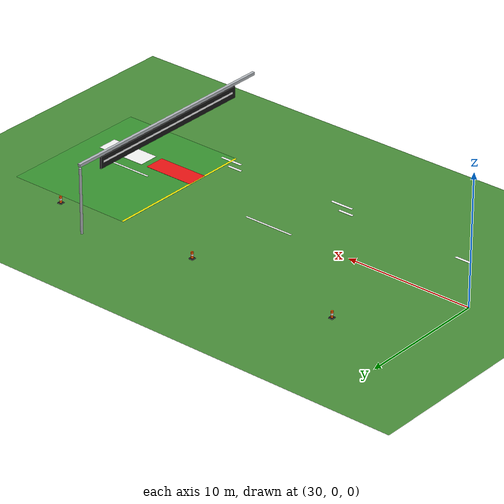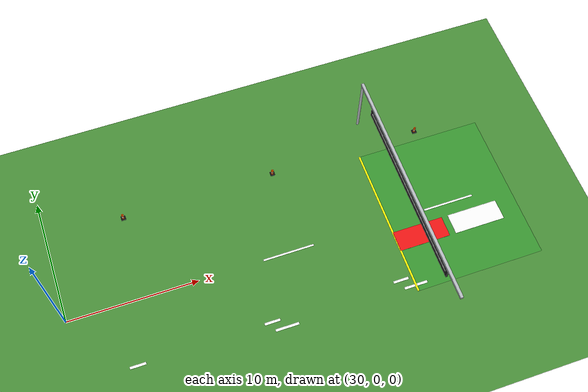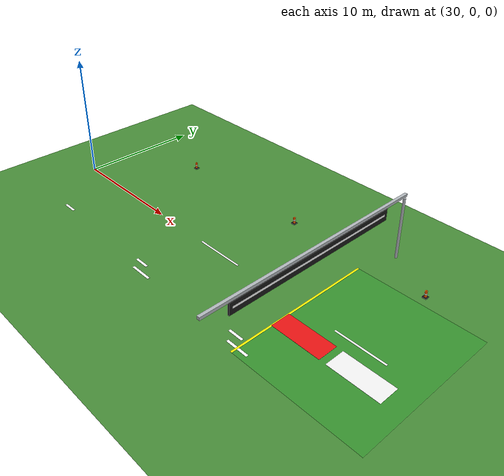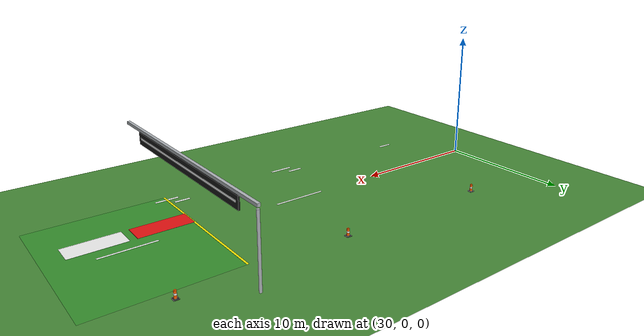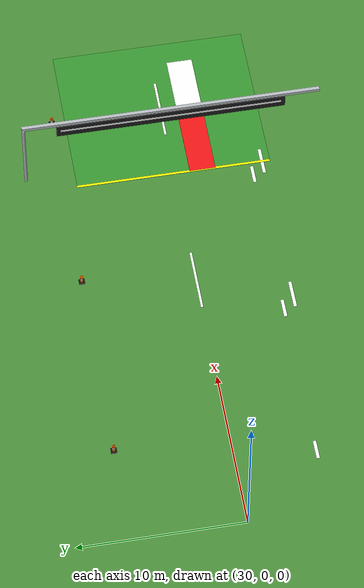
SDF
<sdf version="1.6">
 <world name="sem_silesia_ring_2026">
  <model name="ground_plane">
   <static>true</static>
   <link name="link">
    <collision name="collision">
     <geometry><plane><normal>0 0 1</normal><size>600 600</size></plane></geometry>
     <surface><friction><ode><mu>0.6</mu><mu2>0.6</mu2></ode></friction></surface>
    </collision>
    <visual name="visual">
     <geometry><plane><normal>0 0 1</normal><size>600 600</size></plane></geometry>
     <material><ambient>0.28 0.55 0.22 1</ambient><diffuse>0.28 0.55 0.22 1</diffuse></material>
    </visual>
   </link>
  </model>
  <model name="cd_s1_0">
   <static>true</static>
   <pose>60.0000 0.0000 0.0050 0 0 0.0000</pose>
   <link name="link">
    <visual name="v">
     <geometry><box><size>4.0000 0.1500 0.0080</size></box></geometry>
     <material><ambient>1 1 1 1</ambient><diffuse>1 1 1 1</diffuse></material>
    </visual>
    <collision name="c">
     <geometry><box><size>4.0000 0.1500 0.0080</size></box></geometry>
     <surface><friction><ode><mu>0.9</mu><mu2>0.9</mu2></ode></friction></surface>
    </collision>
   </link>
  </model>
  <model name="cd_s1_1">
   <static>true</static>
   <pose>47.0000 0.0000 0.0050 0 0 0.0000</pose>
   <link name="link">
    <visual name="v">
     <geometry><box><size>4.0000 0.1500 0.0080</size></box></geometry>
     <material><ambient>1 1 1 1</ambient><diffuse>1 1 1 1</diffuse></material>
    </visual>
    <collision name="c">
     <geometry><box><size>4.0000 0.1500 0.0080</size></box></geometry>
     <surface><friction><ode><mu>0.9</mu><mu2>0.9</mu2></ode></friction></surface>
    </collision>
   </link>
  </model>
  <model name="lmark_h_0">
   <static>true</static>
   <pose>55.0000 -5.5000 0.0050 0 0 0.0000</pose>
   <link name="link">
    <visual name="v">
     <geometry><box><size>1.8000 0.2000 0.0080</size></box></geometry>
     <material><ambient>1 1 1 1</ambient><diffuse>1 1 1 1</diffuse></material>
    </visual>
    <collision name="c">
     <geometry><box><size>1.8000 0.2000 0.0080</size></box></geometry>
     <surface><friction><ode><mu>0.9</mu><mu2>0.9</mu2></ode></friction></surface>
    </collision>
   </link>
  </model>
  <model name="lmark_v_0">
   <static>true</static>
   <pose>54.1000 -4.8000 0.0050 0 0 1.5708</pose>
   <link name="link">
    <visual name="v">
     <geometry><box><size>0.2000 1.2000 0.0080</size></box></geometry>
     <material><ambient>1 1 1 1</ambient><diffuse>1 1 1 1</diffuse></material>
    </visual>
    <collision name="c">
     <geometry><box><size>0.2000 1.2000 0.0080</size></box></geometry>
     <surface><friction><ode><mu>0.9</mu><mu2>0.9</mu2></ode></friction></surface>
    </collision>
   </link>
  </model>
  <model name="lmark_h_1">
   <static>true</static>
   <pose>45.0000 -5.5000 0.0050 0 0 0.0000</pose>
   <link name="link">
    <visual name="v">
     <geometry><box><size>1.8000 0.2000 0.0080</size></box></geometry>
     <material><ambient>1 1 1 1</ambient><diffuse>1 1 1 1</diffuse></material>
    </visual>
    <collision name="c">
     <geometry><box><size>1.8000 0.2000 0.0080</size></box></geometry>
     <surface><friction><ode><mu>0.9</mu><mu2>0.9</mu2></ode></friction></surface>
    </collision>
   </link>
  </model>
  <model name="lmark_v_1">
   <static>true</static>
   <pose>44.1000 -4.8000 0.0050 0 0 1.5708</pose>
   <link name="link">
    <visual name="v">
     <geometry><box><size>0.2000 1.2000 0.0080</size></box></geometry>
     <material><ambient>1 1 1 1</ambient><diffuse>1 1 1 1</diffuse></material>
    </visual>
    <collision name="c">
     <geometry><box><size>0.2000 1.2000 0.0080</size></box></geometry>
     <surface><friction><ode><mu>0.9</mu><mu2>0.9</mu2></ode></friction></surface>
    </collision>
   </link>
  </model>
  <model name="lmark_v_2">
   <static>true</static>
   <pose>34.1000 -4.8000 0.0050 0 0 1.5708</pose>
   <link name="link">
    <visual name="v">
     <geometry><box><size>0.2000 1.2000 0.0080</size></box></geometry>
     <material><ambient>1 1 1 1</ambient><diffuse>1 1 1 1</diffuse></material>
    </visual>
    <collision name="c">
     <geometry><box><size>0.2000 1.2000 0.0080</size></box></geometry>
     <surface><friction><ode><mu>0.9</mu><mu2>0.9</mu2></ode></friction></surface>
    </collision>
   </link>
  </model>
  <model name="finish_line">
   <static>true</static>
   <pose>55.0000 0.0000 0.0070 0 0 0.0000</pose>
   <link name="link">
    <visual name="v">
     <geometry><box><size>0.1500 12.0000 0.0080</size></box></geometry>
     <material><ambient>1 0.95 0.0 1</ambient><diffuse>1 0.95 0.0 1</diffuse></material>
    </visual>
    <collision name="c">
     <geometry><box><size>0.1500 12.0000 0.0080</size></box></geometry>
     <surface><friction><ode><mu>0.9</mu><mu2>0.9</mu2></ode></friction></surface>
    </collision>
   </link>
  </model>
  <model name="finish_area_marking">
   <static>true</static>
   <pose>60.0000 0.0000 0.0040 0 0 0.0000</pose>
   <link name="link">
    <visual name="v">
     <geometry><box><size>10.0000 12.0000 0.0030</size></box></geometry>
     <material><ambient>0.20 0.65 0.20 0.5</ambient><diffuse>0.20 0.65 0.20 0.5</diffuse></material>
    </visual>
    <collision name="c">
     <geometry><box><size>10.0000 12.0000 0.0030</size></box></geometry>
     <surface><friction><ode><mu>0.9</mu><mu2>0.9</mu2></ode></friction></surface>
    </collision>
   </link>
  </model>
  <model name="kerb_entry_3">
   <static>true</static>
   <pose>61.5000 -1.8000 0.0120 0 0 0.0000</pose>
   <link name="link">
    <visual name="v">
     <geometry><box><size>4.0000 1.6000 0.0120</size></box></geometry>
     <material><ambient>0.96 0.96 0.96 1</ambient><diffuse>0.96 0.96 0.96 1</diffuse></material>
    </visual>
    <collision name="c">
     <pose>0 0 -0.0060 0 0 0</pose>
     <geometry><box><size>4.0000 1.6000 0.0010</size></box></geometry>
     <surface><friction><ode><mu>0.9</mu><mu2>0.9</mu2></ode></friction></surface>
    </collision>
   </link>
  </model>
  <model name="kerb_entry_4">
   <static>true</static>
   <pose>57.0000 -1.8000 0.0120 0 0 0.0000</pose>
   <link name="link">
    <visual name="v">
     <geometry><box><size>4.0000 1.6000 0.0120</size></box></geometry>
     <material><ambient>0.92 0.08 0.08 1</ambient><diffuse>0.92 0.08 0.08 1</diffuse></material>
    </visual>
    <collision name="c">
     <pose>0 0 -0.0060 0 0 0</pose>
     <geometry><box><size>4.0000 1.6000 0.0010</size></box></geometry>
     <surface><friction><ode><mu>0.9</mu><mu2>0.9</mu2></ode></friction></surface>
    </collision>
   </link>
  </model>
  <model name="cn_s1n_60">
   <static>true</static>
   <pose>60.0000 6.8000 0 0 0 0</pose>
   <link name="link">
    <visual name="base">
     <pose>0 0 0.03 0 0 0</pose>
     <geometry><box><size>0.35 0.35 0.06</size></box></geometry>
     <material><ambient>0.08 0.08 0.08 1</ambient><diffuse>0.08 0.08 0.08 1</diffuse></material>
    </visual>
    <visual name="body">
     <pose>0 0 0.30 0 0 0</pose>
     <geometry><cylinder><radius>0.09</radius><length>0.50</length></cylinder></geometry>
     <material><ambient>1.0 0.38 0.0 1</ambient><diffuse>1.0 0.38 0.0 1</diffuse></material>
    </visual>
    <visual name="stripe">
     <pose>0 0 0.32 0 0 0</pose>
     <geometry><cylinder><radius>0.095</radius><length>0.12</length></cylinder></geometry>
     <material><ambient>1 1 1 1</ambient><diffuse>1 1 1 1</diffuse></material>
    </visual>
    <visual name="tip">
     <pose>0 0 0.57 0 0 0</pose>
     <geometry><sphere><radius>0.04</radius></sphere></geometry>
     <material><ambient>1.0 0.38 0.0 1</ambient><diffuse>1.0 0.38 0.0 1</diffuse></material>
    </visual>
    <collision name="c">
     <pose>0 0 0.28 0 0 0</pose>
     <geometry><cylinder><radius>0.09</radius><length>0.56</length></cylinder></geometry>
    </collision>
   </link>
  </model>
  <model name="cn_s1n_48">
   <static>true</static>
   <pose>48.0000 6.8000 0 0 0 0</pose>
   <link name="link">
    <visual name="base">
     <pose>0 0 0.03 0 0 0</pose>
     <geometry><box><size>0.35 0.35 0.06</size></box></geometry>
     <material><ambient>0.08 0.08 0.08 1</ambient><diffuse>0.08 0.08 0.08 1</diffuse></material>
    </visual>
    <visual name="body">
     <pose>0 0 0.30 0 0 0</pose>
     <geometry><cylinder><radius>0.09</radius><length>0.50</length></cylinder></geometry>
     <material><ambient>1.0 0.38 0.0 1</ambient><diffuse>1.0 0.38 0.0 1</diffuse></material>
    </visual>
    <visual name="stripe">
     <pose>0 0 0.32 0 0 0</pose>
     <geometry><cylinder><radius>0.095</radius><length>0.12</length></cylinder></geometry>
     <material><ambient>1 1 1 1</ambient><diffuse>1 1 1 1</diffuse></material>
    </visual>
    <visual name="tip">
     <pose>0 0 0.57 0 0 0</pose>
     <geometry><sphere><radius>0.04</radius></sphere></geometry>
     <material><ambient>1.0 0.38 0.0 1</ambient><diffuse>1.0 0.38 0.0 1</diffuse></material>
    </visual>
    <collision name="c">
     <pose>0 0 0.28 0 0 0</pose>
     <geometry><cylinder><radius>0.09</radius><length>0.56</length></cylinder></geometry>
    </collision>
   </link>
  </model>
  <model name="cn_s1n_36">
   <static>true</static>
   <pose>36.0000 6.8000 0 0 0 0</pose>
   <link name="link">
    <visual name="base">
     <pose>0 0 0.03 0 0 0</pose>
     <geometry><box><size>0.35 0.35 0.06</size></box></geometry>
     <material><ambient>0.08 0.08 0.08 1</ambient><diffuse>0.08 0.08 0.08 1</diffuse></material>
    </visual>
    <visual name="body">
     <pose>0 0 0.30 0 0 0</pose>
     <geometry><cylinder><radius>0.09</radius><length>0.50</length></cylinder></geometry>
     <material><ambient>1.0 0.38 0.0 1</ambient><diffuse>1.0 0.38 0.0 1</diffuse></material>
    </visual>
    <visual name="stripe">
     <pose>0 0 0.32 0 0 0</pose>
     <geometry><cylinder><radius>0.095</radius><length>0.12</length></cylinder></geometry>
     <material><ambient>1 1 1 1</ambient><diffuse>1 1 1 1</diffuse></material>
    </visual>
    <visual name="tip">
     <pose>0 0 0.57 0 0 0</pose>
     <geometry><sphere><radius>0.04</radius></sphere></geometry>
     <material><ambient>1.0 0.38 0.0 1</ambient><diffuse>1.0 0.38 0.0 1</diffuse></material>
    </visual>
    <collision name="c">
     <pose>0 0 0.28 0 0 0</pose>
     <geometry><cylinder><radius>0.09</radius><length>0.56</length></cylinder></geometry>
    </collision>
   </link>
  </model>
  <model name="gantry_finish_pL">
   <static>true</static>
   <pose>56.0000 9.0000 2.5000 0 0 0</pose>
   <link name="link">
    <visual name="v">
     <geometry><cylinder><radius>0.1000</radius><length>5.0000</length></cylinder></geometry>
     <material><ambient>0.70 0.72 0.74 1</ambient><diffuse>0.70 0.72 0.74 1</diffuse></material>
    </visual>
    <collision name="c">
     <geometry><cylinder><radius>0.1000</radius><length>5.0000</length></cylinder></geometry>
     <surface><friction><ode><mu>0.9</mu><mu2>0.9</mu2></ode></friction></surface>
    </collision>
   </link>
  </model>
  <model name="gantry_finish_bar">
   <static>true</static>
   <pose>56.0000 0.0000 5.2500 0 0 0.0000</pose>
   <link name="link">
    <visual name="v">
     <geometry><box><size>0.2200 18.2000 0.2200</size></box></geometry>
     <material><ambient>0.70 0.72 0.74 1</ambient><diffuse>0.70 0.72 0.74 1</diffuse></material>
    </visual>
    <collision name="c">
     <geometry><box><size>0.2200 18.2000 0.2200</size></box></geometry>
     <surface><friction><ode><mu>0.9</mu><mu2>0.9</mu2></ode></friction></surface>
    </collision>
   </link>
  </model>
  <model name="gantry_finish_banner">
   <static>true</static>
   <pose>56.0000 0.0000 4.6000 0 0 0.0000</pose>
   <link name="link">
    <visual name="v">
     <geometry><box><size>0.1200 14.0000 0.9000</size></box></geometry>
     <material><ambient>0.1 0.1 0.1 1</ambient><diffuse>0.1 0.1 0.1 1</diffuse></material>
    </visual>
    <collision name="c">
     <geometry><box><size>0.1200 14.0000 0.9000</size></box></geometry>
     <surface><friction><ode><mu>0.9</mu><mu2>0.9</mu2></ode></friction></surface>
    </collision>
   </link>
  </model>
  <model name="gantry_finish_stripe">
   <static>true</static>
   <pose>56.0000 0.0000 4.6200 0 0 0.0000</pose>
   <link name="link">
    <visual name="v">
     <geometry><box><size>0.1300 13.5000 0.1500</size></box></geometry>
     <material><ambient>1 1 1 1</ambient><diffuse>1 1 1 1</diffuse></material>
    </visual>
    <collision name="c">
     <geometry><box><size>0.1300 13.5000 0.1500</size></box></geometry>
     <surface><friction><ode><mu>0.9</mu><mu2>0.9</mu2></ode></friction></surface>
    </collision>
   </link>
  </model>
 </world>
</sdf>
